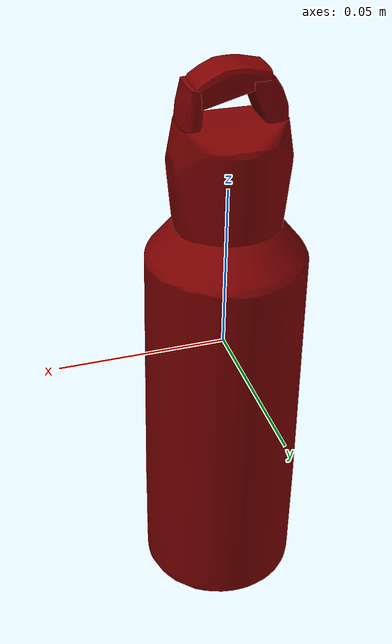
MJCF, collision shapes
<?xml version='1.0' encoding='utf-8'?>
<mujoco model="water_bottle_0">
  <asset>
    <mesh file="visual/model_normalized_0.obj" name="model_normalized_0_vis" scale="0.17000000000000004 0.17000000000000004 0.17000000000000004" refquat="1.0 0.0 0.0 0.0" />
    <mesh file="visual/model_normalized_1.obj" name="model_normalized_1_vis" scale="0.17000000000000004 0.17000000000000004 0.17000000000000004" refquat="1.0 0.0 0.0 0.0" />
    <mesh file="visual/model_normalized_2.obj" name="model_normalized_2_vis" scale="0.17000000000000004 0.17000000000000004 0.17000000000000004" refquat="1.0 0.0 0.0 0.0" />
    <material name="Metal.003" specular="0.5" shininess="0.492983719" rgba="0.800000 0.800000 0.800000 1.0" />
    <material name="body.001" specular="0.5" shininess="0.12991717700000002" rgba="0.204028 0.950000 0.386672 1.0" />
    <material name="rubber.002" specular="0.5" shininess="0.097218536" rgba="0.014645 0.017388 0.015814 1.0" />
    <mesh file="collision/collision_mesh_collision_0.obj" name="water_collision_mesh_0" scale="0.17000000000000004 0.17000000000000004 0.17000000000000004" refquat="1.0 0.0 0.0 0.0" />
    <mesh file="collision/collision_mesh_collision_1.obj" name="water_collision_mesh_1" scale="0.17000000000000004 0.17000000000000004 0.17000000000000004" refquat="1.0 0.0 0.0 0.0" />
    <mesh file="collision/collision_mesh_collision_2.obj" name="water_collision_mesh_2" scale="0.17000000000000004 0.17000000000000004 0.17000000000000004" refquat="1.0 0.0 0.0 0.0" />
    <mesh file="collision/collision_mesh_collision_3.obj" name="water_collision_mesh_3" scale="0.17000000000000004 0.17000000000000004 0.17000000000000004" refquat="1.0 0.0 0.0 0.0" />
    <mesh file="collision/collision_mesh_collision_4.obj" name="water_collision_mesh_4" scale="0.17000000000000004 0.17000000000000004 0.17000000000000004" refquat="1.0 0.0 0.0 0.0" />
    </asset>
  <default>
    <default class="region">
      <geom group="1" conaffinity="0" contype="0" rgba="0 1 0 0" />
      </default>
    <default class="collision">
      <geom group="0" rgba="0.5 0 0 0.5" density="1000.0" />
      </default>
    </default>
  <worldbody>
    <body>
      <body name="object">
        <geom solimp="0.998 0.998 0.001" solref="0.001 1" density="100" friction="0.95 0.3 0.1" type="mesh" mesh="model_normalized_0_vis" conaffinity="0" contype="0" group="1" material="Metal.003" />
        <geom solimp="0.998 0.998 0.001" solref="0.001 1" density="100" friction="0.95 0.3 0.1" type="mesh" mesh="model_normalized_1_vis" conaffinity="0" contype="0" group="1" material="body.001" />
        <geom solimp="0.998 0.998 0.001" solref="0.001 1" density="100" friction="0.95 0.3 0.1" type="mesh" mesh="model_normalized_2_vis" conaffinity="0" contype="0" group="1" material="rubber.002" />
        <geom class="region" name="reg_bbox" type="box" pos="0.00045572155000000016 9.367000000000405e-07 -0.0006204617499999954" size="0.023173655400000007 0.023175528800000005 0.08437953825000002" />
        <geom mesh="water_collision_mesh_0" type="mesh" class="collision" />
        <geom mesh="water_collision_mesh_1" type="mesh" class="collision" />
        <geom mesh="water_collision_mesh_2" type="mesh" class="collision" />
        <geom mesh="water_collision_mesh_3" type="mesh" class="collision" />
        <geom mesh="water_collision_mesh_4" type="mesh" class="collision" />
        </body>
      </body>
    </worldbody>
  </mujoco>
